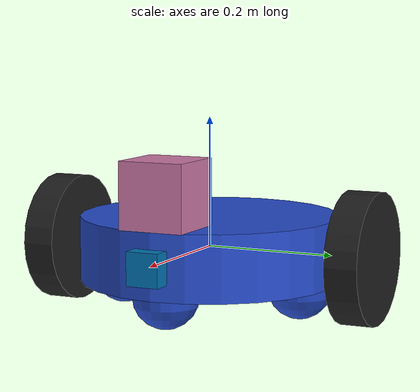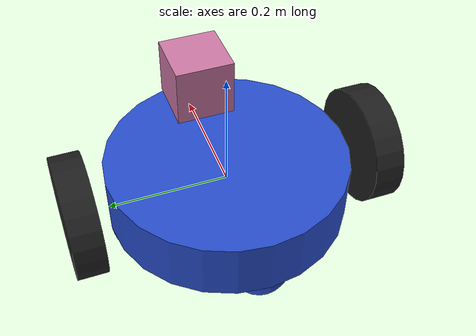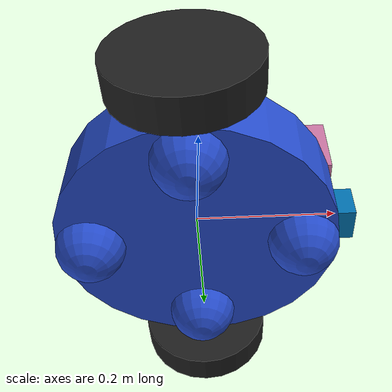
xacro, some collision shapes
<?xml version='1.0'?>

<robot name="my_robot" xmlns:xacro="http://www.ros.org/wiki/xacro">
<xacro:include filename="$(find my_robot)/urdf/my_robot.gazebo" />

  <link name="robot_footprint"></link>

  <joint name="robot_footprint_joint" type="fixed">
    <origin xyz="0 0 0" rpy="0 0 0" />
    <parent link="robot_footprint"/>
    <child link="chassis" />
  </joint>

  <link name='chassis'>
    <pose>0 0 0.1 0 0 0</pose>

    <inertial>
      <mass value="15.0"/>
      <origin xyz="0.0 0 0" rpy=" 0 0 0"/>
      <inertia
          ixx="0.1" ixy="0" ixz="0"
          iyy="0.1" iyz="0"
          izz="0.1"
      />
    </inertial>

    <collision name='collision'>
      <origin xyz="0 0 0" rpy="  0 0 0"/>
      <geometry>
        <cylinder radius=".2" length="0.1" />
      </geometry>
    </collision>

    <visual name='chassis_visual'>
      <origin xyz="0 0 0" rpy=" 0 0 0"/>
      <geometry>
        <cylinder radius=".2" length="0.1" />
      </geometry>
    </visual>

    <collision name='back_caster_collision'>
      <origin xyz="-0.15 0 -0.05" rpy=" 0 0 0"/>
      <geometry>
        <sphere radius="0.0499"/>
      </geometry>
    </collision>

    <visual name='back_caster_visual'>
      <origin xyz="-0.15 0 -0.05" rpy=" 0 0 0"/>
      <geometry>
        <sphere radius="0.05"/>
      </geometry>
    </visual>

    <collision name='front_caster_collision'>
      <origin xyz="0.15 0 -0.05" rpy=" 0 0 0"/>
      <geometry>
        <sphere radius="0.0499"/>
      </geometry>
    </collision>

    <visual name='front_caster_visual'>
      <origin xyz="0.15 0 -0.05" rpy=" 0 0 0"/>
      <geometry>
        <sphere radius="0.05"/>
      </geometry>
    </visual>
    <collision name='left_caster_collision'>
      <origin xyz="0.0 0.15 -0.05" rpy=" 0 0 0"/>
      <geometry>
        <sphere radius="0.0499"/>
      </geometry>
    </collision>

    <visual name='left_caster_visual'>
      <origin xyz="0 0.15 -0.05" rpy=" 0 0 0"/>
      <geometry>
        <sphere radius="0.05"/>
      </geometry>
    </visual>
    <collision name='right_caster_collision'>
      <origin xyz="0.0 -0.15 -0.05" rpy=" 0 0 0"/>
      <geometry>
        <sphere radius="0.0499"/>
      </geometry>
    </collision>

    <visual name='right_caster_visual'>
      <origin xyz="0 -0.15 -0.05" rpy=" 0 0 0"/>
      <geometry>
        <sphere radius="0.05"/>
      </geometry>
    </visual>

  </link>
  <link name='left_wheel'>
    <pose>0 0 0.15 0 0 0</pose>

    <inertial>
      <mass value="2.0"/>
      <origin xyz="0.0 0 0" rpy=" 0 1.5707 1.5707"/>
      <inertia
          ixx="0.1" ixy="0" ixz="0"
          iyy="0.1" iyz="0"
          izz="0.1"
      />
    </inertial>

    <collision name='collision'>
      <origin xyz="0 0 0" rpy="  0 1.5707 1.5707"/>
      <geometry>
        <cylinder radius=".1" length="0.05" />
      </geometry>
    </collision>

    <visual name='left_wheel_visual'>
      <origin xyz="0 0 0" rpy=" 0 1.5707 1.5707"/>
      <geometry>
        <cylinder radius=".1" length="0.05" />
      </geometry>
    </visual>

  </link>

  <link name='right_wheel'>
    <pose>0 0 0.15 0 0 0</pose>

    <inertial>
      <mass value="2.0"/>
      <origin xyz="0.0 0 0" rpy=" 0 1.5707 1.5707"/>
      <inertia
          ixx="0.1" ixy="0" ixz="0"
          iyy="0.1" iyz="0"
          izz="0.1"
      />
    </inertial>

    <collision name='collision'>
      <origin xyz="0.0 0 0" rpy=" 0 1.5707 1.5707"/>
      <geometry>
        <cylinder radius=".1" length="0.05" />
      </geometry>
    </collision>

    <visual name='right_wheel_visual'>
      <origin xyz="0 0 0" rpy=" 0 1.5707 1.5707"/>
      <geometry>
        <cylinder radius=".1" length="0.05" />
      </geometry>
    </visual>

  </link>
  <link name='camera'>
    <pose>0 0 0 0 0 0</pose>

    <inertial>
      <mass value="0.1"/>
      <origin xyz="0.0 0 0" rpy=" 0 0 0"/>
      <inertia
          ixx="1e-6" ixy="0" ixz="0"
          iyy="1e-6" iyz="0"
          izz="1e-6"
      />
    </inertial>

    <collision name='collision'>
      <origin xyz="0 0 0" rpy=" 0 0 0"/>
      <geometry>
        <box size=".05 .05 .05"/>
      </geometry>
    </collision>

    <visual name='camera_visual'>
      <origin xyz="0 0 0" rpy=" 0 0 0"/>
      <geometry>
        <box size=".05 .05 .05"/>
      </geometry>
    </visual>

  </link>
  <joint name="camera_optical_joint" type="fixed">
    <origin xyz="0 0 0" rpy="-1.5707 0 -1.5707"/>
    <parent link="camera"/>
    <child link="camera_link_optical"/>
  </joint>

  <link name="camera_link_optical">
  </link>
  <link name='hokuyo'>
    <pose>0 0 0 0 0 0</pose>

    <inertial>
      <mass value="1e-5"/>
      <origin xyz="0.0 0 0" rpy=" 0 0 0"/>
      <inertia
          ixx="1e-6" ixy="0" ixz="0"
          iyy="1e-6" iyz="0"
          izz="1e-6"
      />
    </inertial>

    <collision name='collision'>
      <origin xyz="0 0 0" rpy=" 0 0 0"/>
      <geometry>
        <box size=".1 .1 .1"/>
      </geometry>
    </collision>

    <visual name='hokuyo_visual'>
      <origin xyz="0 0 0" rpy=" 0 0 0"/>
      <geometry>
        <mesh filename = "package://my_robot/meshes/hokuyo.dae"/>
      </geometry>
    </visual>

  </link>

  <joint type="fixed" name="camera_joint">
    <origin xyz="0.2 0 0" rpy="0 0 0"/>
    <child link="camera"/>
    <parent link="chassis"/>
    <axis xyz="0 1 0" rpy="0 0 0"/>
  </joint>

  <joint type="fixed" name="hokuyo_joint">
    <origin xyz="0.15 0 0.1" rpy="0 0 0"/>
    <child link="hokuyo"/>
    <parent link="chassis"/>
    <axis xyz="0 1 0" rpy="0 0 0"/>
  </joint>
  <joint type="continuous" name="right_wheel_hinge">
    <origin xyz="0 -0.25 0" rpy="0 0 0"/>
    <child link="right_wheel"/>
    <parent link="chassis"/>
    <axis xyz="0 1 0" rpy="0 0 0"/>
    <limit effort="10000" velocity="1000"/>
    <dynamics damping="1.0" friction="1.0"/>
  </joint>
  <joint type="continuous" name="left_wheel_hinge">
    <origin xyz="0 0.25 0" rpy="0 0 0"/>
    <child link="left_wheel"/>
    <parent link="chassis"/>
    <axis xyz="0 1 0" rpy="0 0 0"/>
    <limit effort="10000" velocity="1000"/>
    <dynamics damping="1.0" friction="1.0"/>
  </joint>
<gazebo reference="left_wheel">
    <material>Gazebo/Black</material>
</gazebo>

<gazebo reference="right_wheel">
    <material>Gazebo/Black</material>
</gazebo>

<gazebo reference="chassis">
    <material>Gazebo/Blue</material>
</gazebo>

</robot>
